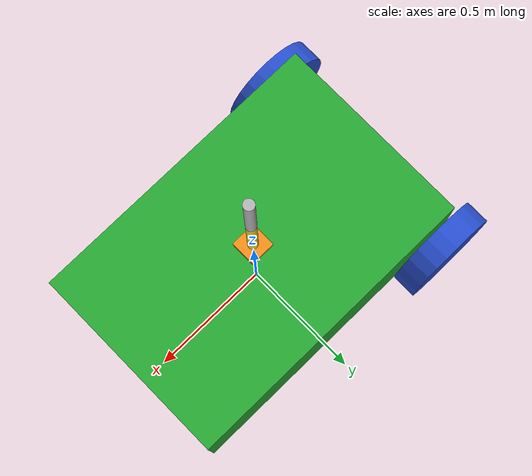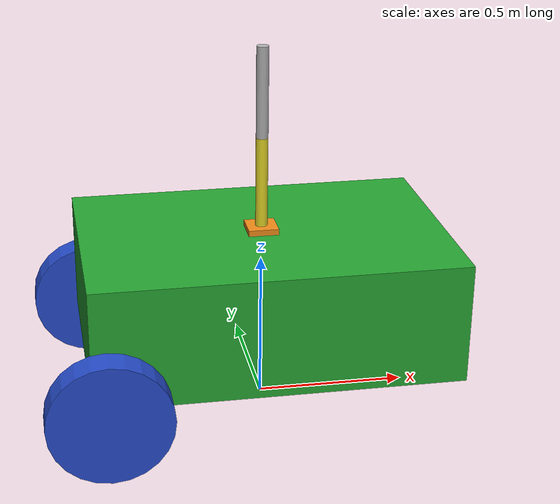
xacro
<?xml version="1.0"?>
<robot xmlns:xacro="http://www.ros.org/wiki/xacro">

    <xacro:property name="base_length" value="1.2"/>
    <xacro:property name="base_width" value="0.8"/>
    <xacro:property name="base_height" value="0.4"/>
    <xacro:property name="wheel_radius" value="0.2"/>
    <xacro:property name="wheel_length" value="0.1"/>
    <xacro:property name="caster_wheel_radius" value="0.1"/>
    <xacro:property name="arm_base_length" value="0.1"/>
    <xacro:property name="arm_base_width" value="0.1"/>
    <xacro:property name="arm_base_height" value="0.02"/>
    <xacro:property name="forearm_length" value="0.3"/>
    <xacro:property name="forearm_radius" value="0.02"/>
    <xacro:property name="hand_radius" value="0.02"/>
    <xacro:property name="hand_lenght" value="0.3"/>

    <link name="base_link">
        <visual>
            <geometry>
                <box size="${base_length} ${base_width} ${base_height}" />
            </geometry>
            <origin xyz="0 0 ${base_height/2.0}" rpy="0 0 0" />
            <material name="green"/>
        </visual>

        <collision>
            <geometry>
                <box size="${base_length} ${base_width} ${base_height}" />
            </geometry>
            <origin xyz="0 0 ${base_height/2.0}" rpy="0 0 0" />
        </collision>

        <xacro:box_inertia m="5.0" x="${base_length}" y="${base_width}" z="${base_height}" o_xyz="0 0 ${base_height/2.0}" o_rpy="0 0 0" />
    </link>

    <xacro:macro name="wheel" params="prefix y">
        <link name="${prefix}_wheel">
            <visual>
                <geometry>
                    <cylinder radius="${wheel_radius}" length="${wheel_length}"/>
                </geometry>
                <origin xyz="0 ${y*wheel_length/2.0} 0" rpy="${pi/2.0} 0 0" />
                <material name="blue"/>
            </visual>

            <collision>
                <geometry>
                    <sphere radius="${wheel_radius}" />
                </geometry>
                <origin xyz="0 ${y*wheel_length/2.0} 0" rpy="0 0 0" />
            </collision>

            <xacro:cylinderical_inertia m="1" r="${wheel_radius}" l="${wheel_length}" o_xyz="0 ${y*wheel_length/2.0} 0" o_rpy="${pi/2.0} 0 0" />
        </link>
    </xacro:macro>

    <xacro:wheel prefix="right" y="1" />
    <xacro:wheel prefix="left"  y="-1"/>

    <link name="caster_wheel_link">
        <visual>
            <geometry>
                <sphere radius="${caster_wheel_radius}"/>
            </geometry>
            <origin xyz="0 0 0" rpy="0 0 0" />
            <material name="blue"/>
        </visual>

        <collision>
            <geometry>
                <sphere radius="${caster_wheel_radius}"/>
            </geometry>
            <origin xyz="0 0 0" rpy="0 0 0" />
        </collision>

        <xacro:spherical_inertia m="0.5" r="${caster_wheel_radius}" o_xyz="0 0 0" o_rpy="0 0 0"/>
    </link>

    <link name="base_footprint">
    </link>

    <link name="arm_base_link">
        <visual>
            <geometry>
                <box size="${arm_base_length} ${arm_base_width} ${arm_base_height}" />
            </geometry>
            <origin xyz="0 0 ${arm_base_height/2.0}" rpy="0 0 0" />
            <material name="orange"/>
        </visual>

        <collision>
            <geometry>
                <box size="${arm_base_length} ${arm_base_width} ${arm_base_height}" />
            </geometry>
            <origin xyz="0 0 ${arm_base_height/2.0}" rpy="0 0 0" />
        </collision>

        <xacro:box_inertia m="0.5" x="${arm_base_length}" y="${arm_base_width}" z="${arm_base_height}" o_xyz="0 0 ${arm_base_height/2.0}" o_rpy="0 0 0" />
    </link>

    <link name="forearm_link">
        <visual>
            <geometry>
                <cylinder radius="${forearm_radius}" length="${forearm_length}" />
            </geometry>
            <origin xyz="0 0 ${forearm_length/2.0}" rpy="0 0 0" />
            <material name="yellow"/>
        </visual>

        <collision>
                <geometry>
                    <cylinder radius="${forearm_radius}" length="${forearm_length}"/>
                </geometry>
                <origin xyz="0 0 ${forearm_length/2.0}" rpy="0 0 0" />
            </collision>

            <xacro:cylinderical_inertia m="0.3" r="${forearm_radius}" l="${forearm_length}" o_xyz="0 0 ${forearm_length/2.0}" o_rpy="0 0 0" />

    </link>

    <link name="hand_link">
        <visual>
            <geometry>
                <cylinder radius="${hand_radius}" length="${hand_lenght}"/>
            </geometry>
            <origin xyz="0 0 ${hand_lenght/2.0}" rpy="0 0 0"/>
        </visual>
        <material name="orange"/>

        <collision>
                <geometry>
                    <cylinder radius="${hand_radius}" length="${hand_lenght}"/>
                </geometry>
                <origin xyz="0 0 ${hand_lenght/2.0}" rpy="0 0 0"/>
            </collision>

            <xacro:cylinderical_inertia m="0.3" r="${hand_radius}" l="${hand_lenght}" o_xyz="0 0 ${hand_lenght/2.0}" o_rpy="0 0 0" />

    </link>

    <joint name="Base_left_r_wheel" type="continuous">
        <parent link="base_link" />
        <child link="left_wheel" />
        <origin xyz="${-((base_length/2.0)-0.05)} ${-base_width/2.0} 0" rpy="0 0 0"/>
        <axis xyz="0 1 0"/>
    </joint>

    <joint name="Base_right_r_wheel" type="continuous">
        <parent link="base_link" />
        <child link="right_wheel" />
        <origin xyz="${-((base_length/2.0)-0.05)} ${base_width/2.0} 0" rpy="0 0 0"/>
        <axis xyz="0 1 0"/>
    </joint>

    <joint name="Base_caster_wheel" type="fixed">
        <parent link="base_link" />
        <child link="caster_wheel_link" />
        <origin xyz="0.2 0 ${-caster_wheel_radius}" rpy="0 0 0"/>
    </joint>

    <joint name="base_joint" type="fixed">
        <parent link="base_footprint" />
        <child link="base_link" />
        <origin xyz="0 0 ${wheel_radius}" rpy="0 0 0"/>
    </joint>

    <joint name="base_forearm_link" type="revolute">
        <parent link="arm_base_link"/>
        <child link="forearm_link"/>
        <origin xyz="0 0 ${arm_base_height}" rpy="0 0 0"/>
        <axis xyz="0 0 1"/>
        <limit lower="0" upper="${pi/2.0}" effort="100" velocity="100"/>
        <dynamics damping="0.3" friction="0.3"/>
    </joint>

    <joint name="hand_forearm_joint" type="revolute">
        <parent link="forearm_link"/>
        <child link="hand_link"/>
        <origin xyz="0 0 ${forearm_length}" rpy="0 0 0"/>
        <axis xyz="0 1 0"/>
        <limit lower="0" upper="${pi/2.0}" effort="100" velocity="100"/>
        <dynamics damping="0.3" friction="0.3"/>

    </joint>

    <joint name="base_arm_joint" type="fixed">
        <parent link="base_link"/>
        <child link="arm_base_link"/>
        <origin xyz="0 0 ${base_height}" rpy="0 0 0"/>
    </joint>

</robot>
